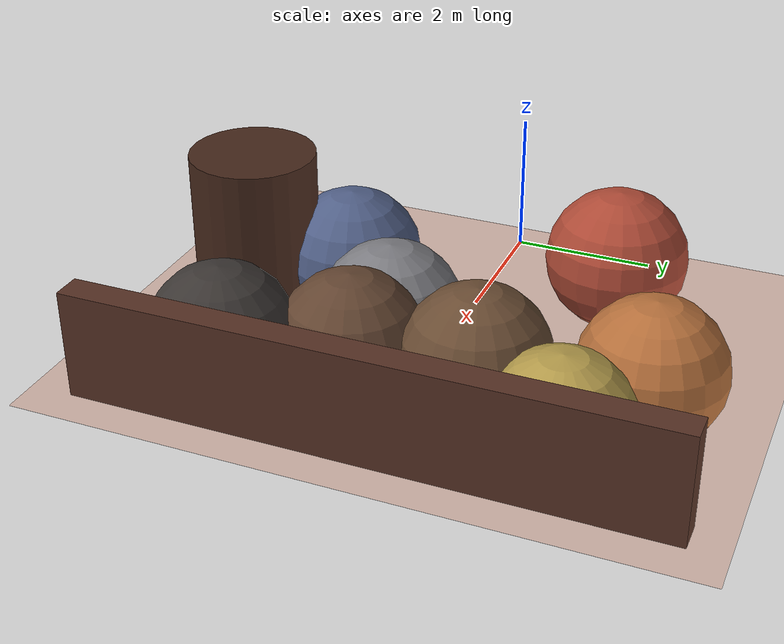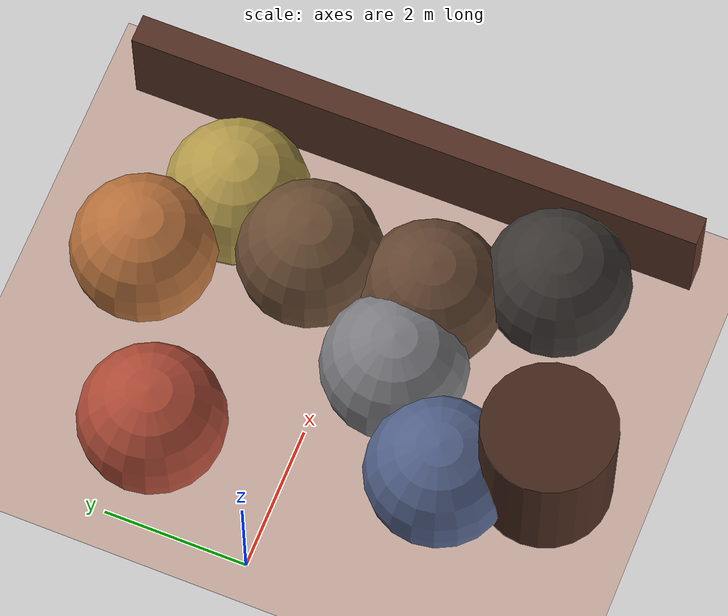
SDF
<?xml version="1.0" ?>
<sdf version="1.6">
  <world name="mars_world">
    <gravity>0 0 -3.71</gravity>
    <scene>
      <ambient>0.6 0.45 0.35 1</ambient>
      <background>0.85 0.55 0.42 1</background>
    </scene>

    <light name="sun" type="directional">
      <cast_shadows>true</cast_shadows>
      <pose>0 0 20 0 0 0</pose>
      <diffuse>1 0.93 0.8 1</diffuse>
      <specular>0.2 0.2 0.2 1</specular>
      <direction>-0.5 0.2 -0.8</direction>
    </light>

    <model name="mars_ground">
      <static>true</static>
      <link name="ground_link">
        <collision name="ground_col"><geometry><plane><normal>0 0 1</normal><size>120 120</size></plane></geometry></collision>
        <visual name="ground_vis"><geometry><plane><normal>0 0 1</normal><size>120 120</size></plane></geometry><material><ambient>0.75 0.38 0.24 1</ambient><diffuse>0.8 0.42 0.26 1</diffuse></material></visual>
      </link>
    </model>

    <model name="obstacle_wall_1"><static>true</static><pose>6 0 0.75 0 0 0</pose><link name="link"><collision name="col"><geometry><box><size>0.4 8 1.5</size></box></geometry></collision><visual name="vis"><geometry><box><size>0.4 8 1.5</size></box></geometry><material><ambient>0.35 0.2 0.15 1</ambient><diffuse>0.35 0.2 0.15 1</diffuse></material></visual></link></model>
    <model name="obstacle_tower"><static>true</static><pose>2.5 -3.2 1.0 0 0 0</pose><link name="link"><collision name="col"><geometry><cylinder><radius>0.9</radius><length>2.0</length></cylinder></geometry></collision><visual name="vis"><geometry><cylinder><radius>0.9</radius><length>2.0</length></cylinder></geometry><material><ambient>0.28 0.16 0.11 1</ambient><diffuse>0.28 0.16 0.11 1</diffuse></material></visual></link></model>

    <model name="rock_red_big"><static>true</static><pose>1.2 1.8 0.7 0 0 0</pose><link name="body"><visual name="visual"><geometry><sphere><radius>1.0</radius></sphere></geometry><material><ambient>0.70 0.30 0.22 1</ambient><diffuse>0.70 0.30 0.22 1</diffuse></material><scale>0.9 0.8 0.7</scale></visual><collision name="collision"><geometry><sphere><radius>1.0</radius></sphere></geometry><scale>0.9 0.8 0.7</scale></collision></link></model>
    <model name="rock_gray_flat"><static>true</static><pose>3.2 -0.8 0.35 0 0 0</pose><link name="body"><visual name="visual"><geometry><sphere><radius>1.0</radius></sphere></geometry><material><ambient>0.50 0.50 0.52 1</ambient><diffuse>0.50 0.50 0.52 1</diffuse></material><scale>1.3 1.1 0.35</scale></visual><collision name="collision"><geometry><sphere><radius>1.0</radius></sphere></geometry><scale>1.3 1.1 0.35</scale></collision></link></model>
    <model name="rock_yellow_small"><static>true</static><pose>4.8 2.1 0.25 0 0 0</pose><link name="body"><visual name="visual"><geometry><sphere><radius>1.0</radius></sphere></geometry><material><ambient>0.72 0.62 0.30 1</ambient><diffuse>0.72 0.62 0.30 1</diffuse></material><scale>0.35 0.30 0.25</scale></visual><collision name="collision"><geometry><sphere><radius>1.0</radius></sphere></geometry><scale>0.35 0.30 0.25</scale></collision></link></model>
    <model name="rock_dark_tall"><static>true</static><pose>5.0 -2.4 0.6 0 0 0</pose><link name="body"><visual name="visual"><geometry><sphere><radius>1.0</radius></sphere></geometry><material><ambient>0.24 0.22 0.21 1</ambient><diffuse>0.24 0.22 0.21 1</diffuse></material><scale>0.45 0.45 0.9</scale></visual><collision name="collision"><geometry><sphere><radius>1.0</radius></sphere></geometry><scale>0.45 0.45 0.9</scale></collision></link></model>
    <model name="rock_blue_mid"><static>true</static><pose>2.0 -1.9 0.4 0 0 0</pose><link name="body"><visual name="visual"><geometry><sphere><radius>1.0</radius></sphere></geometry><material><ambient>0.33 0.39 0.55 1</ambient><diffuse>0.33 0.39 0.55 1</diffuse></material><scale>0.60 0.50 0.4</scale></visual><collision name="collision"><geometry><sphere><radius>1.0</radius></sphere></geometry><scale>0.60 0.50 0.4</scale></collision></link></model>
    <model name="rock_orange_mid"><static>true</static><pose>3.5 2.9 0.45 0 0 0</pose><link name="body"><visual name="visual"><geometry><sphere><radius>1.0</radius></sphere></geometry><material><ambient>0.73 0.45 0.24 1</ambient><diffuse>0.73 0.45 0.24 1</diffuse></material><scale>0.55 0.45 0.45</scale></visual><collision name="collision"><geometry><sphere><radius>1.0</radius></sphere></geometry><scale>0.55 0.45 0.45</scale></collision></link></model>
    <model name="rock_shield_1"><static>true</static><pose>4.2 0.8 0.55 0 0 0</pose><link name="body"><visual name="visual"><geometry><sphere><radius>1.0</radius></sphere></geometry><material><ambient>0.43 0.31 0.21 1</ambient><diffuse>0.43 0.31 0.21 1</diffuse></material><scale>1.1 0.5 0.55</scale></visual><collision name="collision"><geometry><sphere><radius>1.0</radius></sphere></geometry><scale>1.1 0.5 0.55</scale></collision></link></model>
    <model name="rock_shield_2"><static>true</static><pose>4.3 -0.9 0.45 0 0 0</pose><link name="body"><visual name="visual"><geometry><sphere><radius>1.0</radius></sphere></geometry><material><ambient>0.40 0.28 0.20 1</ambient><diffuse>0.40 0.28 0.20 1</diffuse></material><scale>1.0 0.4 0.45</scale></visual><collision name="collision"><geometry><sphere><radius>1.0</radius></sphere></geometry><scale>1.0 0.4 0.45</scale></collision></link></model>
  </world>
</sdf>
